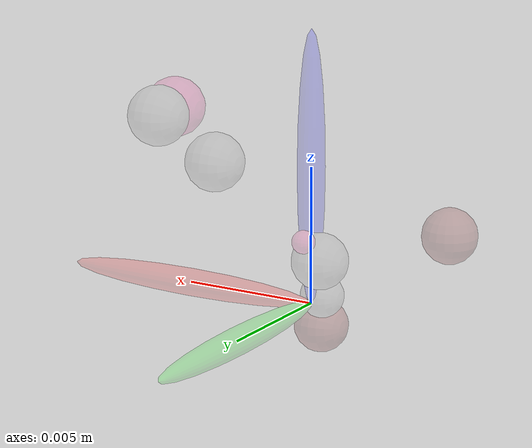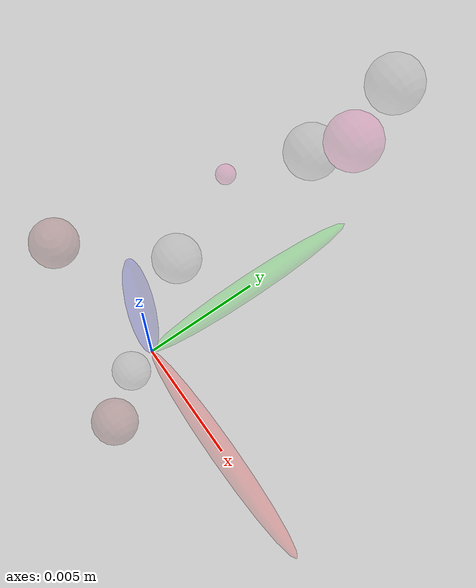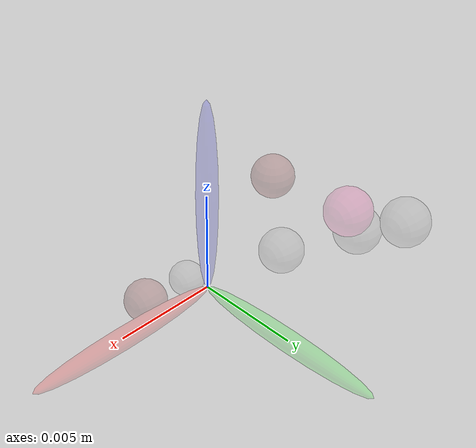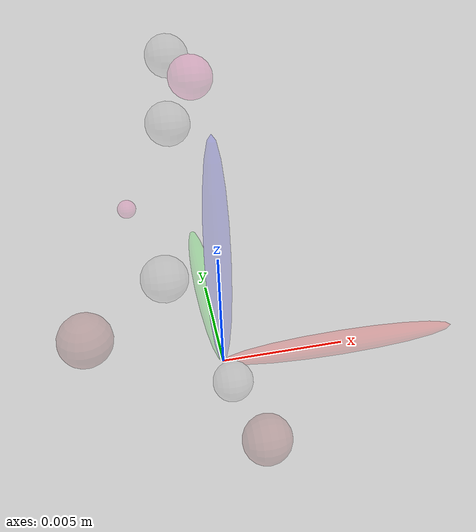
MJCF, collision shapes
<mujoco model="mouse">
	<!--This stuff can all be left alone-->
	<compiler angle="radian">
		<lengthrange mode="muscle"/>
	</compiler>
	<default>
	<geom contype="0" conaffinity="0"/>
	<joint limited="true" damping="0.5" armature=".1" stiffness="0"></joint>
	<tendon width="0.005" rgba=".95 .3 .3 1" limited="false"></tendon>
	</default>
	<option timestep="0.002"/>
	<size njmax="1000" nconmax="400" nkey="1" nuser_jnt="1"/>
	<visual>
		<scale framelength="0.5" framewidth="0.01"/>
	</visual>
	<asset>
		<material name="target" rgba="0.59999999999999998 0.29999999999999999 0.29999999999999999 0.29999999999999999"/>
		<texture type="skybox" builtin="gradient" rgb1="1 1 1" rgb2="0.6 0.8 1" width="256" height="1536"/>
		<texture name="grid" type="2d" builtin="checker" width="512" height="512" rgb1=".1 .2 .3" rgb2=".2 .3 .4"/>
		<material name="grid" texture="grid" texrepeat="1 1" texuniform="true" reflectance=".2"/>
		<mesh file="/root/vast/eric/vnl-ray/vnl_ray/mouse_forelimb/assets_mousereach/mesh/Bones_Scapula.stl"/>
		<mesh file="/root/vast/eric/vnl-ray/vnl_ray/mouse_forelimb/assets_mousereach/mesh/Bone_Segmentation_Humerus.stl"/>
		<mesh file="/root/vast/eric/vnl-ray/vnl_ray/mouse_forelimb/assets_mousereach/mesh/Bone_Segmentation_Segment_8.stl"/>
		<mesh file="/root/vast/eric/vnl-ray/vnl_ray/mouse_forelimb/assets_mousereach/mesh/Bone_Segments_Hand.stl"/>
		<mesh file="/root/vast/eric/vnl-ray/vnl_ray/mouse_forelimb/assets_mousereach/mesh/Bone_Segments_Radius.stl"/>
		<mesh file="/root/vast/eric/vnl-ray/vnl_ray/mouse_forelimb/assets_mousereach/mesh/Bone_Segments_Ulna.stl"/>
	</asset>
	<!--This stuff can all be left alone-->
	<worldbody>
	<light directional="true"/>
	<body name="ground" euler="0 0 0">
		<camera name="my_camera" mode="track" pos="-0.001 .004 0.05"/>
		<camera name="my_camera1" mode="track" pos="-0.001 .004 0.05"/>
		<geom name="target" type="sphere" size="0.001" material="target" pos="-0.005 -0.001 .003" contype="0" conaffinity="0"/>
		<geom type="ellipsoid" size=".0005" rgba="1 0 0 .1" fromto="0 0 0 .01 0 0"/>
		<geom type="ellipsoid" size=".0005" rgba="0 1 0 .1" fromto="0 0 0 0 .01 0"/>
		<geom type="ellipsoid" size=".0005" rgba="0 0 1 .1" fromto="0 0 0 0 0 .01"/>
		<!--EOB Clavicle-->
		<body name="clavicle" pos="-.012 0 .008" euler="1.5707 1.5707 0">'
			<joint name="ground_clavicle" pos="0 0 0" axis="0 0 1" range="1e-100 1e-99" limited="true"/>
			<!--Mesh Geom-->
			<geom type="mesh" mesh="Bone_Segmentation_Segment_8" pos="0 0 0"/>
			<!--Inertia Values-->
			<inertial pos="0 0 0" mass="0.000035" diaginertia="0.000004 0.000004 0.000004"/>
		</body>
		<!--SOB Scapula-->

		<body name="scapula" pos="-.012 0 .008" euler="1.5707 1.5707 0">
			<joint name="ground_scapula" pos="0 0 0" axis="0 1 0" range="1e-100 1e-99" limited="true"/>
			<!--Mesh Geom-->

			<geom type="mesh" mesh="Bones_Scapula" pos="0 0 0"/>
			<!--Inertia Values-->
			<inertial pos="0.0106 0.0013 0.0115" mass="0.0003" diaginertia="5.3e-06 5.3e-06 5.3e-06"/>
			<site name="interial_center_scapula" pos="0.0106 0.0013 0.0115" rgba=".6 .6 .6 .1" size="0.001"/>
			<body name="humerus" pos="0.0035 -0.006    0" euler="0 0 .8">
				<!--it might be smart to replace this with a balljoint-->
				<!-- Replacing shoulder joints with a ball joint -->
				<joint name="sh_elv" pos="0.0084 0.0014 0.0123" axis=".001 .001 .5" range="-2 1" ref="0" limited="true"/>
				<joint name="sh_extension" pos="0.0084 0.0014 0.0123" axis=".001 .5 .001" range="-2.3 -1" ref="-1" limited="true"/>
				<joint name="sh_rotation"  pos="0.0084 0.0014 0.0123" axis=".5 .001 .001" range="-3 -1" ref="-1" limited="true"/>

				<site name="shoulder_joint_viz_large" pos="0.0084 0.0014 0.0123" rgba="1 .2 .6 .2" size="0.0010"/>
				<site name="shoulder_joint_viz_small" pos="0.0084 0.0014 0.0123" rgba="1 .2 .6 .6" size="0.0005"/>
				<inertial pos="0.0067 0.0005 0.01111" mass="0.0001258" diaginertia="5.3e-06 5.3e-06 5.3e-06"/>
				<site name="interial_center_humerus" pos="0.0067 0.0005 0.01111" rgba=".6 .6 .6 .1" size="0.001"/>
				<geom type="mesh" mesh="Bone_Segmentation_Humerus" pos="0 0 0"/>
					<body name="ulna" pos=".0001 0 .0002">
						<geom type="mesh" mesh="Bone_Segments_Ulna" pos="0 0 0"/>

						<inertial pos="-0.0003 0.001 0.0099" mass=" 0.00071" diaginertia="7.1e-6 7.1e-6 7.1e-6"/>
						<site name="interial_center_ulna" pos="-0.0003 .001 0.0099" rgba=".6 .6 .6 .1" size="0.001"/>

						<joint name="elbow" pos="0.0031 -.0001 0.0087" axis=".09 .34 -0.51822258" range="-.7 1.55" limited="true" damping="0.1"/>
						<site name="elbow_joint_viz_large" pos="0.0031 -.0001 0.0087" rgba="1 .2 .6 .2" size="0.0004"/>
						<site name="elbow_joint_viz_small" pos="0.0031 -.0001 0.0087" rgba="1 .2 .6 .6" size="0.0002"/>
						<!--Attatchment Sites-->

					<body name="radius" pos="0 0 0">
						<geom type="mesh" mesh="Bone_Segments_Radius" pos="0 0 0"/>

						<inertial pos="-0.0003 0.0014 0.0103" mass=" 0.00071" diaginertia="5.3e-06 5.3e-06 5.3e-06"/>
						<site name="interial_center_radius" pos="-0.0003 .001 0.0099" rgba=".6 .6 .6 .1" size="0.0008"/>

						<body name="hand" pos="0 0 0">
							<geom type="mesh" mesh="Bone_Segments_Hand" pos="0 0 0"/>
							<geom name="finger_tip" type="sphere" size="0.001" material="target" pos="-0.0071999999999999998 0.0019 0.012999999999999999" contype="0" conaffinity="0"/>
							<inertial pos="-0.0048 0.0019 0.012" mass=" 0.00071" diaginertia="7e-07 7e-07 7e-07"/>
							<site name="interial_center_hand" pos="-0.0048 0.0019 0.012" rgba=".6 .6 .6 .1" size="0.0008"/>
						<!--EOB Hand-->
					</body>
					<!--EOB Radius-->
				</body>
				<!--EOB Ulna-->
			</body>
			<!--EOB Humerus-->
		</body>
		<!--EOB Scapula-->
	</body>
	<!--EOB Ground-->
	</body>
</worldbody>
<actuator>
	<position name="sh_elv_act" joint="sh_elv" ctrllimited="true" ctrlrange="-1 1"/>
	<position name="sh_ext_act" joint="sh_extension" ctrllimited="true" ctrlrange="-1 1"/>
	<position name="sh_rot_act" joint="sh_rotation" ctrllimited="true" ctrlrange="-1 1"/>
	<position name="elbow_act" joint="elbow" ctrllimited="true" ctrlrange="-1 1"/>
</actuator>

</mujoco>
